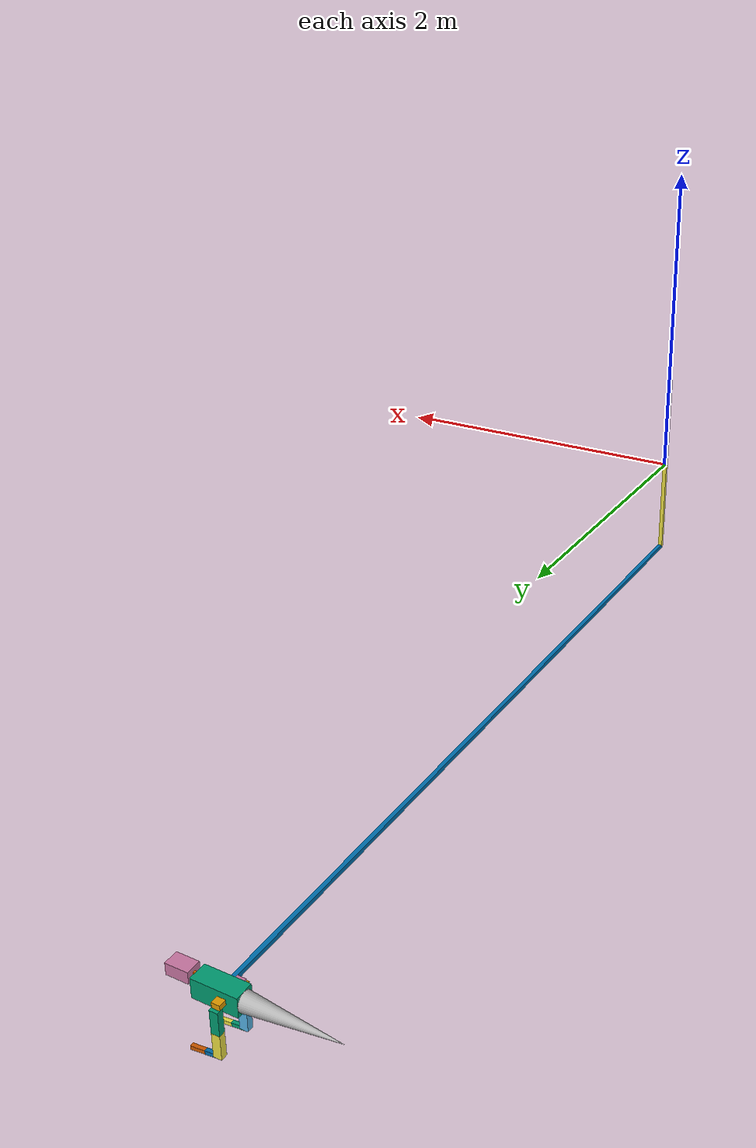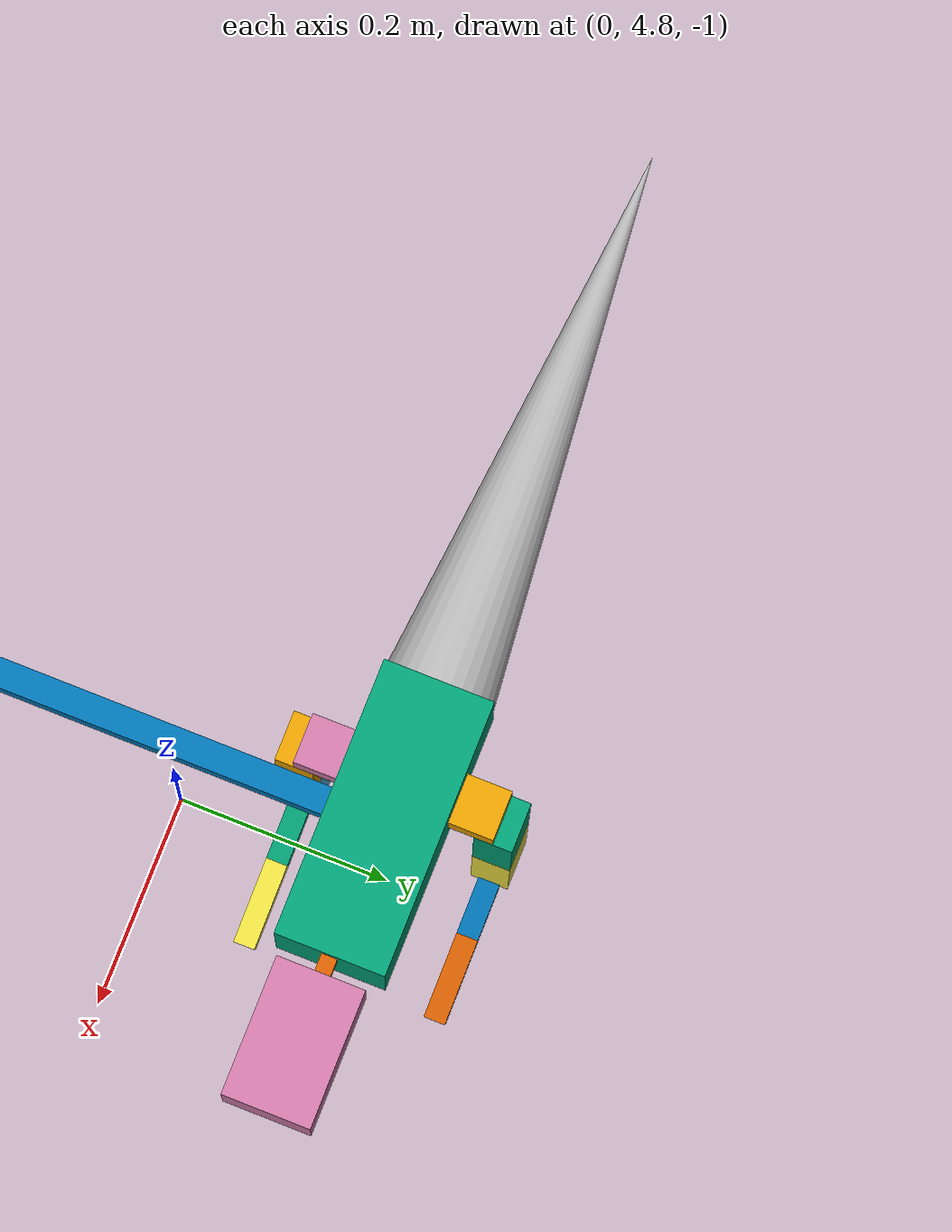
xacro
<?xml version="1.0" ?>
<robot
  xmlns:xacro="http://www.ros.org/wiki/xacro"
  name="body">
  <xacro:include filename="$(find simple_biped)/urdf/gazebo.xacro" />
  <xacro:ros_control prefix="terop"/>
  <xacro:property name="M_PI" value="3.1415926535897931" />
 <xacro:property name="body_height" value="0.106" />
 <xacro:property name="body_width" value="0.100" />
 <xacro:property name="body_large" value="0.250" />

  <link name="world"/>
  <link name="base_link"/>

  <joint name="base_link_to_body" type="fixed">
    <parent link="base_link"/>
    <child link="body"/>
  </joint>

  <link name="body">
    <inertial>
      <origin xyz="0 0 0" />
      <mass value="1.0"/>
      <xacro:cuboid_inertia_def x="${body_large}" y="${body_width}" z="${body_height}" mass="1.0"/>
    </inertial>
    <visual>
      <!--origin xyz="-0.0235 0 -0.03525" rpy="0 0 0" /-->
      <origin xyz="0 0 0" rpy="0 0 0" />
      <geometry>
        <box size="${body_large} ${body_width} ${body_height}" />
      </geometry>
    </visual>
    <collision>
      <geometry>
        <box size="${body_large} ${body_width} ${body_height}" />
      </geometry>
    </collision>
  </link>

  <xacro:include filename="$(find simple_biped)/urdf/structure.xacro"/>
  <xacro:include filename="$(find simple_biped)/urdf/leg.xacro" />
  <xacro:include filename="$(find simple_biped)/urdf/details.xacro"/>
  <!-- Left Arm -->
  <xacro:structure parent="world" child="base_link" body_height="${body_height}" body_width="${body_width}" body_large="${body_large}"/>
  <xacro:details parent="body" body_height="${body_height}" body_width="${body_width}" body_large="${body_large}"/>
  <xacro:leg side="l" parent="body" reflect="1" body_height="${body_height}" body_width="${body_width}" body_large="${body_large}"/>
  <!-- Right Arm -->
   <xacro:leg side="r" parent="body" reflect="-1" body_height="${body_height}" body_width="${body_width}" body_large="${body_large}"/>

</robot>

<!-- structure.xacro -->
<robot
  xmlns:xacro="http://www.ros.org/wiki/xacro"
  name="structure">
  <xacro:property name="column_height" value="1.25" />
  <xacro:property name="cross_length" value="0.025" />
  <xacro:property name="beam_height" value="5" />
  <xacro:property name="support_height" value="1.26" />
  <xacro:macro name="structure" params="parent child body_height body_width body_large">

  <joint name="fixed" type="fixed">
    <parent link="${parent}"/>
    <child link="column"/>
    <origin xyz="0 0 0" rpy="0 0 0" />
  </joint>
  <joint name="column_to_beam" type="continuous">
    <parent link="column"/>
    <child link="beam"/>
    <axis xyz="0 0 1"/>
    <origin xyz="0 0 ${-column_height/2}" rpy="0 0 0" />
  </joint>

  <joint name="beam_to_base_link" type="revolute">
    <parent link="beam"/>
    <child link="${child}"/>
    <origin xyz="0 ${beam_height} 0" rpy="0 0 0" />
      <axis xyz="0 1 0"/>
    <limit effort="4" velocity="4" lower="-1" upper="1" />
  </joint>

  <link name="column">
    <inertial>
      <origin xyz="0 0 0" />
      <mass value="3"/>
      <xacro:cuboid_inertia_def x="${cross_length}" y="${cross_length}" z="${column_height}" mass="30"/>
    </inertial>
    <visual>
      <!--origin xyz="-0.0235 0 -0.03525" rpy="0 0 0" /-->
      <origin xyz="0 0 0" rpy="0 0 0" />
      <geometry>
        <box size="${cross_length} ${cross_length} ${column_height}" />
      </geometry>
    </visual>
    <collision>
      <origin xyz="0 0 0" rpy="0 0 0" />
      <geometry>
        <box size="${cross_length} ${cross_length} ${column_height}" />
      </geometry>
    </collision>
  </link>

    <link name="beam">
    <inertial>
      <origin xyz="0 ${beam_height/2} 0" rpy="0 0 0"/>
      <mass value="8"/>
      <xacro:cuboid_inertia_def x="${cross_length}" y="${beam_height}" z="${cross_length}" mass="80"/>
    </inertial>
    <visual>
      <!--origin xyz="-0.0235 0 -0.03525" rpy="0 0 0" /-->
      <origin xyz="0 ${beam_height/2} 0" rpy="0 0 0" />
      <geometry>
        <box size="${cross_length} ${beam_height} ${cross_length} " />
      </geometry>
    </visual>
    <collision>
      <origin xyz="0 ${beam_height/2} 0" rpy="0 0 0" />
      <geometry>
        <box size="${cross_length} ${beam_height} ${cross_length} " />
      </geometry>
    </collision>
  </link>

</xacro:macro>
</robot>

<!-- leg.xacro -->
<robot
  xmlns:xacro="http://www.ros.org/wiki/xacro"
  name="leg">

 <!--xacro:property name="body_height" value="0.106" /-->
 <!--xacro:property name="body_width" value="0.109" /-->
 <!--xacro:property name="body_large" value="0.102" /-->
<xacro:property name="pelvis_height" value="0.028652" />
 <xacro:property name="pelvis_width" value="0.08175" />
 <xacro:property name="pelvis_large" value="0.045" />
 <xacro:property name="thigh_virtual_height" value="0.001" />
 <xacro:property name="thigh_virtual_width" value="0.001" />
 <xacro:property name="thigh_virtual_large" value="0.001" />
<xacro:property name="thigh_height" value="0.125" />
 <xacro:property name="thigh_width" value="0.035" />
 <xacro:property name="thigh_large" value="0.045" />
 <xacro:property name="tibia_height" value="0.130" />
 <xacro:property name="tibia_width" value="0.035" />
 <xacro:property name="tibia_large" value="0.045" />
  <xacro:property name="ankle_height" value="0.0745" />
 <xacro:property name="ankle_width" value="0.020" />
 <xacro:property name="ankle_large" value="0.020" />
   <xacro:property name="phalange_height" value="0.08" />
 <xacro:property name="phalange_width" value="0.020" />
 <xacro:property name="phalange_large" value="0.020" />
   <!-- Friction model from "Characterization and modeling of a Dynamixel servo" by Arno Mensin (model AX12, better than nothing) -->
  <!-- Damping N.m.s/rad -->
  <xacro:property name="dxl_damping" value="0.5" />
  <!-- Friccion N.m -->
  <xacro:property name="dxl_friction" value="0.5" />
  <xacro:macro name="cuboid_inertia_def" params="x y z mass">
    <inertia
      iyy="${mass*(z*z+x*x)/12.0}"
      ixx="${mass*(y*y+z*z)/12.0}"
      izz="${mass*(x*x+y*y)/12.0}"
      ixy="0.0" iyz="0.0" ixz="0.0"/>
  </xacro:macro>
  <xacro:macro name="leg" params="side parent reflect body_height body_width body_large">

      <!-- Transmissions -->
    <xacro:joint_transmission joint="${side}_thigh_pitch_joint"/>
    <xacro:joint_transmission joint="${side}_tibia_joint"/>
    <xacro:joint_transmission joint="${side}_ankle_joint"/>
    <xacro:joint_transmission joint="${side}_phalange_joint"/>
  <link name="${side}_pelvis" >
    <inertial>
      <origin xyz="0 0 ${-1*pelvis_height/2}" />
      <mass value="0.2"/>
      <xacro:cuboid_inertia_def x="${pelvis_large}" y="${pelvis_width}" z="${pelvis_height}" mass="0.2"/>
    </inertial>
    <visual>
      <origin xyz="0 0 ${-1*pelvis_height/2}" rpy="0 0 0" />
      <geometry>
        <box size="${pelvis_large} ${pelvis_width} ${pelvis_height}"/>
      </geometry>
    </visual>
    <collision>
      <origin xyz="0 0 ${-1*pelvis_height/2}" rpy="0 0 0" />
      <geometry>
        <box size="${pelvis_large} ${pelvis_width} ${pelvis_height}"/>
      </geometry>
    </collision>
  </link>

  <link name="${side}_thigh_yaw" >
    <inertial>
      <origin xyz="0 0 0" />
      <mass value="0.05"/>
      <xacro:cuboid_inertia_def x="${thigh_virtual_large}" y="${thigh_virtual_width}" z="${thigh_virtual_height}" mass="0.05"/>
    </inertial>
    <visual>
      <origin xyz="0 0 0" rpy="0 0 0" />
      <geometry>
        <box size="${thigh_virtual_large} ${thigh_virtual_width} ${thigh_virtual_height}"/>
      </geometry>
    </visual>
    <collision>
      <geometry>
        <box size="${thigh_virtual_large} ${thigh_virtual_width} ${thigh_virtual_height}"/>
      </geometry>
    </collision>
  </link>

  <link name="${side}_thigh" >
    <inertial>
      <origin xyz="0 0 ${-1*thigh_height/2}" />
      <mass value="0.20"/>
      <xacro:cuboid_inertia_def x="${thigh_large}" y="${thigh_width}" z="${thigh_height}" mass="0.5"/>
    </inertial>
    <visual>
      <origin xyz="0 0 ${-1*thigh_height/2}" rpy="0 0 0" />
      <geometry>
        <box size="${thigh_large} ${thigh_width} ${thigh_height}"/>
      </geometry>
    </visual>
    <collision>
      <origin xyz="0 0 ${-1*thigh_height/2}" rpy="0 0 0" />
      <geometry>
        <box size="${thigh_large} ${thigh_width} ${thigh_height}"/>
      </geometry>
    </collision>
  </link>

  <link name="${side}_tibia" >
    <inertial>
      <origin xyz="0 0 ${-1*tibia_height/2}" />
      <mass value="0.35"/>
      <xacro:cuboid_inertia_def x="${tibia_large}" y="${tibia_width}" z="${tibia_height}" mass="0.35"/>
    </inertial>
    <visual>
      <origin xyz="0 0 ${-1*tibia_height/2}" rpy="0 0 0" />
      <geometry>
        <box size="${tibia_large} ${tibia_width} ${tibia_height}"/>
      </geometry>
    </visual>
    <collision>
      <origin xyz="0 0 ${-1*tibia_height/2}" rpy="0 0 0" />
      <geometry>
        <box size="${tibia_large} ${tibia_width} ${tibia_height}"/>
      </geometry>
    </collision>
  </link>

  <link name="${side}_ankle" >
    <inertial>
      <origin xyz="0 0 ${-1*ankle_height/2}" />
      <mass value="0.2"/>
      <xacro:cuboid_inertia_def x="${ankle_large}" y="${ankle_width}" z="${ankle_height}" mass="0.2"/>
    </inertial>
    <visual>
      <origin xyz="0 0 ${-1*ankle_height/2}" rpy="0 0 0" />
      <geometry>
        <box size="${ankle_large} ${ankle_width} ${ankle_height}"/>
      </geometry>
    </visual>
    <collision>
      <origin xyz="0 0 ${-1*ankle_height/2}" rpy="0 0 0" />
      <geometry>
        <box size="${ankle_large} ${ankle_width} ${ankle_height}"/>
      </geometry>
        <friction>
          <ode>
            <mu>20000</mu>
            <mu2>20000</mu2>
          </ode>
        </friction>
    </collision>
  </link>

  <link name="${side}_phalange" >
    <inertial>
      <origin xyz="0 0 ${-1*phalange_height/2}" />
      <mass value="0.2"/>
      <xacro:cuboid_inertia_def x="${phalange_large}" y="${phalange_width}" z="${phalange_height}" mass="0.2"/>
    </inertial>
    <visual>
      <origin xyz="0 0 ${-1*phalange_height/2}" rpy="0 0 0" />
      <geometry>
        <box size="${phalange_large} ${phalange_width} ${phalange_height}"/>
      </geometry>
    </visual>
    <collision>
      <origin xyz="0 0 ${-1*phalange_height/2}" rpy="0 0 0" />
      <geometry>
        <box size="${phalange_large} ${phalange_width} ${phalange_height}"/>
      </geometry>
    </collision>
  </link>

  <joint name="${side}_pelvis_joint" type="fixed">
    <parent link="${parent}"/>
    <child link="${side}_pelvis"/>
    <origin xyz="${-body_large/6} ${reflect*body_width/2} ${body_height/5}" rpy="0 0 0" />
    <axis xyz="0 0 1" />
    <!--limit effort="4" velocity="4" lower="0" upper="0.01" /-->
    <dynamics damping="${dxl_damping}" friction="${dxl_friction}" />
  </joint>

  <joint name="${side}_thigh_yaw_joint" type="fixed">
    <parent link="${side}_pelvis"/>
    <child link="${side}_thigh_yaw"/>
    <origin xyz="0 ${reflect*pelvis_width/2} ${-1*pelvis_height}" rpy="0 0 0" />
    <axis xyz="0 0 1" />
    <!--limit effort="4" velocity="4" lower="0" upper="0.01" /-->
    <!--dynamics damping="${dxl_damping}" friction="${dxl_friction}" /-->
  </joint>

  <joint name="${side}_thigh_pitch_joint" type="revolute">
    <parent link="${side}_thigh_yaw"/>
    <child link="${side}_thigh"/>
    <origin xyz="0 0 0" rpy="0 0 0" />
    <axis xyz="0 1 0" />
    <limit effort="8" velocity="6" lower="${-75*M_PI/180}" upper="${45*M_PI/180}"  />
    <dynamics damping="${dxl_damping}" friction="${dxl_friction}" />
  </joint>

  <joint name="${side}_tibia_joint" type="revolute">
    <parent link="${side}_thigh"/>
    <child link="${side}_tibia"/>
    <origin xyz="0 0 ${-1*thigh_height}" rpy="0 0 0" />
    <axis xyz="0 1 0" />
    <limit effort="8" velocity="6" lower="${0*M_PI/180}" upper="${150*M_PI/180}" />
    <dynamics damping="${dxl_damping}" friction="${dxl_friction}" />
  </joint>

  <joint name="${side}_ankle_joint" type="revolute">
    <parent link="${side}_tibia"/>
    <child link="${side}_ankle"/>
    <origin xyz="0 0 ${-1*tibia_height}" rpy="0 0 0" />
    <axis xyz="0 1 0" />
    <limit effort="8" velocity="6" lower="-2.1" upper="-0.8" />
    <dynamics damping="${dxl_damping}" friction="${dxl_friction}" />
  </joint>

  <joint name="${side}_phalange_joint" type="revolute">
    <parent link="${side}_ankle"/>
    <child link="${side}_phalange"/>
    <origin xyz="0 0 ${-1*ankle_height}" rpy="0 0 0" />
    <axis xyz="0 1 0" />
    <limit effort="8" velocity="6" lower="${-45*M_PI/180}" upper="0" />
    <!--dynamics damping="${dxl_damping}" friction="${dxl_friction}" /-->
  </joint>
</xacro:macro>
</robot>

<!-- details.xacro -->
<robot
  xmlns:xacro="http://www.ros.org/wiki/xacro"
  name="details">
  <xacro:macro name="details" params="parent body_height body_width body_large">

 <link name="neck">
    <inertial>
      <origin xyz="0 0 0" />
      <mass value="0.01"/>
      <xacro:cuboid_inertia_def x="${body_large/7}" y="${body_width/7}" z="${body_height/7}" mass="0.01"/>
    </inertial>
    <visual>
      <origin xyz="0 0 0" rpy="0 0 0" />
      <!--origin xyz="-0.0235 0 -0.03525" rpy="0 0 0" /-->
      <geometry>
        <box size="${body_large/7} ${body_width/7} ${body_height/7}" />
      </geometry>
    </visual>
    <collision>
      <origin xyz="0 0 0" rpy="0 0 0" />
      <!--origin xyz="-0.0235 0 -0.03525" rpy="0 0 0" /-->
      <geometry>
        <box size="${body_large/7} ${body_width/7} ${body_height/7}" />
      </geometry>
    </collision>
  </link>
    <link name="head">
    <inertial>
      <origin xyz="${body_large/4} 0 0" />
      <mass value="1"/>
      <xacro:cuboid_inertia_def x="${body_large/2}" y="${body_width*0.8}" z="${body_height*0.6}" mass="1"/>
    </inertial>
    <visual>
      <origin xyz="${body_large*0.5/2} 0 0" rpy="0 0 0" />
      <!--origin xyz="-0.0235 0 -0.03525" rpy="0 0 0" /-->
      <geometry>
        <box size="${body_large*0.5} ${body_width*0.8} ${body_height*0.6}" />
      </geometry>
    </visual>
    <collision>
      <origin xyz="${body_large*0.5/2} 0 0" rpy="0 0 0" />
      <!--origin xyz="-0.0235 0 -0.03525" rpy="0 0 0" /-->
      <geometry>
        <box size="${body_large*0.5} ${body_width*0.8} ${body_height*0.6}" />
      </geometry>
    </collision>
  </link>
  <link name="tail">
    <inertial>
      <origin xyz="-0.200 0 0" />
      <mass value="0.4"/>
      <xacro:cuboid_inertia_def x="${body_large*2}" y="${body_width}" z="${body_height/2}" mass="0.4"/>
    </inertial>
    <visual>
      <origin xyz="-0.250 0 0" rpy="0 ${-M_PI/2} 0" />
      <!--origin xyz="-0.0235 0 -0.03525" rpy="0 0 0" /-->
      <geometry>
        <mesh filename="package://simple_biped/cone.stl" scale="0.005 0.005 0.005"/>
      </geometry>
    </visual>
    <collision>
      <origin xyz="-0.250 0 0" rpy="0 ${-M_PI/2} 0" />
      <!--origin xyz="-0.0235 0 -0.03525" rpy="0 0 0" /-->
      <geometry>
        <mesh filename="package://simple_biped/cone.stl" scale="0.005 0.005 0.005"/>
      </geometry>
    </collision>
  </link>
  <joint name="body_to_tail" type="fixed">
    <parent link="${parent}"/>
    <child link="tail"/>
    <origin xyz="${-body_large/2} 0 0" rpy="0 0 0" />
  </joint>
 <joint name="body_to_neck" type="fixed">
    <parent link="${parent}"/>
    <child link="neck"/>
    <origin xyz="${body_large/2} 0 ${body_height/3}" rpy="0 0 0" />
  </joint>
  <joint name="neck_to_head" type="fixed">
    <parent link="neck"/>
    <child link="head"/>
    <origin xyz="${body_large/14} 0 0" rpy="0 0 0" />
  </joint>
</xacro:macro>
</robot>
